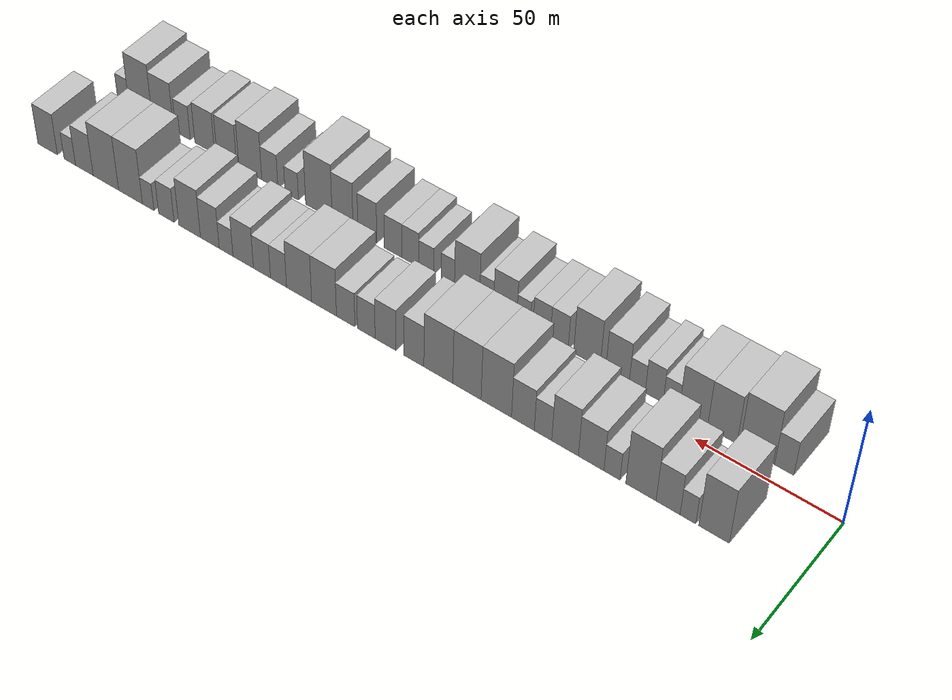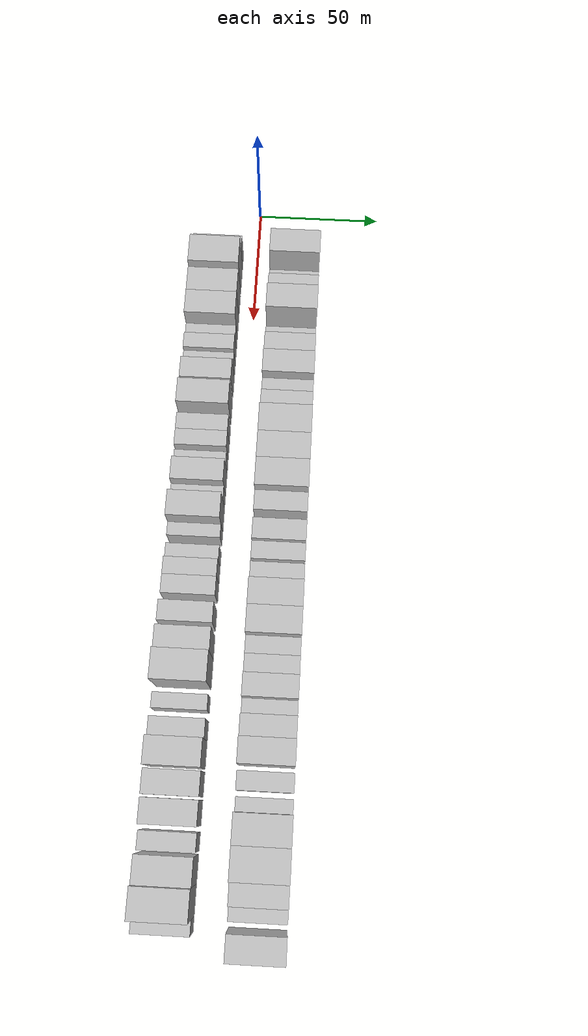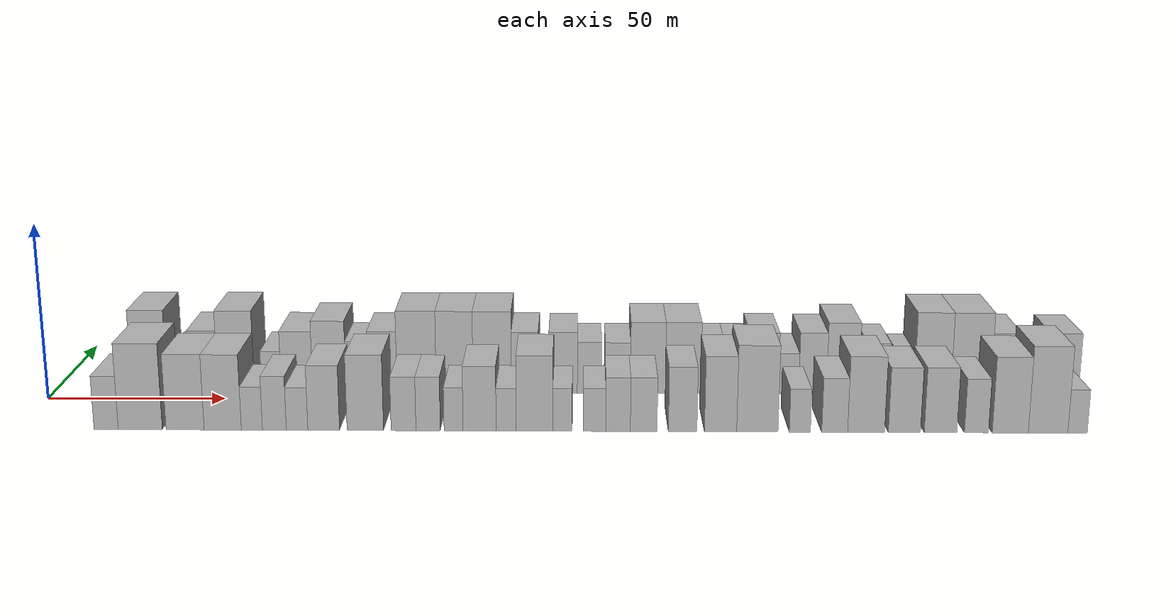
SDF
<sdf version="1.6">
 <world name="default">
  <scene>
   <sky><clouds><speed>12</speed></clouds></sky>
   <ambient>0.4 0.4 0.4 1</ambient>
   <background>0.7 0.7 0.7 1</background>
   <shadows>1</shadows>
  </scene>
  <gravity>0 0 -9.8066</gravity>
  <magnetic_field>6e-06 2.3e-05 -4.2e-05</magnetic_field>
  <physics default="0" name="default_physics" type="ode">
   <ode>
    <solver>
     <type>quick</type>
     <iters>10</iters>
     <sor>1.0</sor>
     <use_dynamic_moi_rescaling>0</use_dynamic_moi_rescaling>
    </solver>
    <constraints>
     <cfm>0</cfm>
     <erp>0.2</erp>
     <contact_max_correcting_vel>100</contact_max_correcting_vel>
     <contact_surface_layer>0.001</contact_surface_layer>
    </constraints>
   </ode>
   <max_step_size>0.004</max_step_size>
   <real_time_factor>1</real_time_factor>
   <real_time_update_rate>250</real_time_update_rate>
  </physics>
  <light name="sun" type="directional">
   <pose>0 0 10 0 0 0</pose>
   <diffuse>0.8 0.8 0.8 1</diffuse>
   <specular>0.2 0.2 0.2 1</specular>
   <attenuation>
    <range>1000</range>
    <constant>0.9</constant>
    <linear>0.01</linear>
    <quadratic>0.001</quadratic>
   </attenuation>
   <direction>-0.5 0.1 -0.9</direction>
  </light>
  <model name="building_1">
   <static>1</static>
   <pose>27.0947 16.0000 0 0.000000 0.000000 1.570796</pose>
   <link name="link">
    <pose>0 0 12.00 0 0 0</pose>
    <collision name="collision"><geometry><box><size>20.0000 10.1894 24.0000</size></box></geometry></collision>
    <visual name="visual">
     <cast_shadows>0</cast_shadows>
     <geometry><box><size>20.0000 10.1894 24.0000</size></box></geometry>
     <material>
      <script>
       <uri>model://HANNAS_wall/materials/scripts</uri>
       <uri>model://HANNAS_wall/materials/textures</uri>
       <name>vrc/HANNAS_wall</name>
      </script>
     </material>
    </visual>
   </link>
  </model>
  <model name="building_2">
   <static>1</static>
   <pose>35.8412 16.0000 0 0.000000 0.000000 1.570796</pose>
   <link name="link">
    <pose>0 0 6.00 0 0 0</pose>
    <collision name="collision"><geometry><box><size>20.0000 5.3035 12.0000</size></box></geometry></collision>
    <visual name="visual">
     <cast_shadows>0</cast_shadows>
     <geometry><box><size>20.0000 5.3035 12.0000</size></box></geometry>
     <material>
      <script>
       <uri>model://HANNAS_wall/materials/scripts</uri>
       <uri>model://HANNAS_wall/materials/textures</uri>
       <name>vrc/HANNAS_wall</name>
      </script>
     </material>
    </visual>
   </link>
  </model>
  <model name="building_3">
   <static>1</static>
   <pose>42.5655 16.0000 0 0.000000 0.000000 1.570796</pose>
   <link name="link">
    <pose>0 0 9.00 0 0 0</pose>
    <collision name="collision"><geometry><box><size>20.0000 8.1453 18.0000</size></box></geometry></collision>
    <visual name="visual">
     <cast_shadows>0</cast_shadows>
     <geometry><box><size>20.0000 8.1453 18.0000</size></box></geometry>
     <material>
      <script>
       <uri>model://HANNAS_wall/materials/scripts</uri>
       <uri>model://HANNAS_wall/materials/textures</uri>
       <name>vrc/HANNAS_wall</name>
      </script>
     </material>
    </visual>
   </link>
  </model>
  <model name="building_4">
   <static>1</static>
   <pose>51.8366 16.0000 0 0.000000 0.000000 1.570796</pose>
   <link name="link">
    <pose>0 0 12.00 0 0 0</pose>
    <collision name="collision"><geometry><box><size>20.0000 10.3967 24.0000</size></box></geometry></collision>
    <visual name="visual">
     <cast_shadows>0</cast_shadows>
     <geometry><box><size>20.0000 10.3967 24.0000</size></box></geometry>
     <material>
      <script>
       <uri>model://HANNAS_wall/materials/scripts</uri>
       <uri>model://HANNAS_wall/materials/textures</uri>
       <name>vrc/HANNAS_wall</name>
      </script>
     </material>
    </visual>
   </link>
  </model>
  <model name="building_5">
   <static>1</static>
   <pose>61.8363 16.0000 0 0.000000 0.000000 1.570796</pose>
   <link name="link">
    <pose>0 0 6.00 0 0 0</pose>
    <collision name="collision"><geometry><box><size>20.0000 5.6027 12.0000</size></box></geometry></collision>
    <visual name="visual">
     <cast_shadows>0</cast_shadows>
     <geometry><box><size>20.0000 5.6027 12.0000</size></box></geometry>
     <material>
      <script>
       <uri>model://HANNAS_wall/materials/scripts</uri>
       <uri>model://HANNAS_wall/materials/textures</uri>
       <name>vrc/HANNAS_wall</name>
      </script>
     </material>
    </visual>
   </link>
  </model>
  <model name="building_6">
   <static>1</static>
   <pose>69.1210 16.0000 0 0.000000 0.000000 1.570796</pose>
   <link name="link">
    <pose>0 0 9.00 0 0 0</pose>
    <collision name="collision"><geometry><box><size>20.0000 8.9667 18.0000</size></box></geometry></collision>
    <visual name="visual">
     <cast_shadows>0</cast_shadows>
     <geometry><box><size>20.0000 8.9667 18.0000</size></box></geometry>
     <material>
      <script>
       <uri>model://HANNAS_wall/materials/scripts</uri>
       <uri>model://HANNAS_wall/materials/textures</uri>
       <name>vrc/HANNAS_wall</name>
      </script>
     </material>
    </visual>
   </link>
  </model>
  <model name="building_7">
   <static>1</static>
   <pose>78.3468 16.0000 0 0.000000 0.000000 1.570796</pose>
   <link name="link">
    <pose>0 0 10.50 0 0 0</pose>
    <collision name="collision"><geometry><box><size>20.0000 9.4850 21.0000</size></box></geometry></collision>
    <visual name="visual">
     <cast_shadows>0</cast_shadows>
     <geometry><box><size>20.0000 9.4850 21.0000</size></box></geometry>
     <material>
      <script>
       <uri>model://HANNAS_wall/materials/scripts</uri>
       <uri>model://HANNAS_wall/materials/textures</uri>
       <name>vrc/HANNAS_wall</name>
      </script>
     </material>
    </visual>
   </link>
  </model>
  <model name="building_8">
   <static>1</static>
   <pose>86.2130 16.0000 0 0.000000 0.000000 1.570796</pose>
   <link name="link">
    <pose>0 0 7.50 0 0 0</pose>
    <collision name="collision"><geometry><box><size>20.0000 6.2475 15.0000</size></box></geometry></collision>
    <visual name="visual">
     <cast_shadows>0</cast_shadows>
     <geometry><box><size>20.0000 6.2475 15.0000</size></box></geometry>
     <material>
      <script>
       <uri>model://HANNAS_wall/materials/scripts</uri>
       <uri>model://HANNAS_wall/materials/textures</uri>
       <name>vrc/HANNAS_wall</name>
      </script>
     </material>
    </visual>
   </link>
  </model>
  <model name="building_9">
   <static>1</static>
   <pose>93.4682 16.0000 0 0.000000 0.000000 1.570796</pose>
   <link name="link">
    <pose>0 0 9.00 0 0 0</pose>
    <collision name="collision"><geometry><box><size>20.0000 8.2628 18.0000</size></box></geometry></collision>
    <visual name="visual">
     <cast_shadows>0</cast_shadows>
     <geometry><box><size>20.0000 8.2628 18.0000</size></box></geometry>
     <material>
      <script>
       <uri>model://HANNAS_wall/materials/scripts</uri>
       <uri>model://HANNAS_wall/materials/textures</uri>
       <name>vrc/HANNAS_wall</name>
      </script>
     </material>
    </visual>
   </link>
  </model>
  <model name="building_10">
   <static>1</static>
   <pose>103.1836 16.0000 0 0.000000 0.000000 1.570796</pose>
   <link name="link">
    <pose>0 0 12.00 0 0 0</pose>
    <collision name="collision"><geometry><box><size>20.0000 11.1680 24.0000</size></box></geometry></collision>
    <visual name="visual">
     <cast_shadows>0</cast_shadows>
     <geometry><box><size>20.0000 11.1680 24.0000</size></box></geometry>
     <material>
      <script>
       <uri>model://HANNAS_wall/materials/scripts</uri>
       <uri>model://HANNAS_wall/materials/textures</uri>
       <name>vrc/HANNAS_wall</name>
      </script>
     </material>
    </visual>
   </link>
  </model>
  <model name="building_11">
   <static>1</static>
   <pose>114.0041 16.0000 0 0.000000 0.000000 1.570796</pose>
   <link name="link">
    <pose>0 0 12.00 0 0 0</pose>
    <collision name="collision"><geometry><box><size>20.0000 10.4730 24.0000</size></box></geometry></collision>
    <visual name="visual">
     <cast_shadows>0</cast_shadows>
     <geometry><box><size>20.0000 10.4730 24.0000</size></box></geometry>
     <material>
      <script>
       <uri>model://HANNAS_wall/materials/scripts</uri>
       <uri>model://HANNAS_wall/materials/textures</uri>
       <name>vrc/HANNAS_wall</name>
      </script>
     </material>
    </visual>
   </link>
  </model>
  <model name="building_12">
   <static>1</static>
   <pose>124.6937 16.0000 0 0.000000 0.000000 1.570796</pose>
   <link name="link">
    <pose>0 0 12.00 0 0 0</pose>
    <collision name="collision"><geometry><box><size>20.0000 10.9062 24.0000</size></box></geometry></collision>
    <visual name="visual">
     <cast_shadows>0</cast_shadows>
     <geometry><box><size>20.0000 10.9062 24.0000</size></box></geometry>
     <material>
      <script>
       <uri>model://HANNAS_wall/materials/scripts</uri>
       <uri>model://HANNAS_wall/materials/textures</uri>
       <name>vrc/HANNAS_wall</name>
      </script>
     </material>
    </visual>
   </link>
  </model>
  <model name="building_13">
   <static>1</static>
   <pose>133.9658 16.0000 0 0.000000 0.000000 1.570796</pose>
   <link name="link">
    <pose>0 0 9.00 0 0 0</pose>
    <collision name="collision"><geometry><box><size>20.0000 7.6379 18.0000</size></box></geometry></collision>
    <visual name="visual">
     <cast_shadows>0</cast_shadows>
     <geometry><box><size>20.0000 7.6379 18.0000</size></box></geometry>
     <material>
      <script>
       <uri>model://HANNAS_wall/materials/scripts</uri>
       <uri>model://HANNAS_wall/materials/textures</uri>
       <name>vrc/HANNAS_wall</name>
      </script>
     </material>
    </visual>
   </link>
  </model>
  <model name="building_14">
   <static>1</static>
   <pose>144.8088 16.0000 0 0.000000 0.000000 1.570796</pose>
   <link name="link">
    <pose>0 0 9.00 0 0 0</pose>
    <collision name="collision"><geometry><box><size>20.0000 8.0482 18.0000</size></box></geometry></collision>
    <visual name="visual">
     <cast_shadows>0</cast_shadows>
     <geometry><box><size>20.0000 8.0482 18.0000</size></box></geometry>
     <material>
      <script>
       <uri>model://HANNAS_wall/materials/scripts</uri>
       <uri>model://HANNAS_wall/materials/textures</uri>
       <name>vrc/HANNAS_wall</name>
      </script>
     </material>
    </visual>
   </link>
  </model>
  <model name="building_15">
   <static>1</static>
   <pose>152.2666 16.0000 0 0.000000 0.000000 1.570796</pose>
   <link name="link">
    <pose>0 0 7.50 0 0 0</pose>
    <collision name="collision"><geometry><box><size>20.0000 6.8674 15.0000</size></box></geometry></collision>
    <visual name="visual">
     <cast_shadows>0</cast_shadows>
     <geometry><box><size>20.0000 6.8674 15.0000</size></box></geometry>
     <material>
      <script>
       <uri>model://HANNAS_wall/materials/scripts</uri>
       <uri>model://HANNAS_wall/materials/textures</uri>
       <name>vrc/HANNAS_wall</name>
      </script>
     </material>
    </visual>
   </link>
  </model>
  <model name="building_16">
   <static>1</static>
   <pose>160.3227 16.0000 0 0.000000 0.000000 1.570796</pose>
   <link name="link">
    <pose>0 0 7.50 0 0 0</pose>
    <collision name="collision"><geometry><box><size>20.0000 7.2447 15.0000</size></box></geometry></collision>
    <visual name="visual">
     <cast_shadows>0</cast_shadows>
     <geometry><box><size>20.0000 7.2447 15.0000</size></box></geometry>
     <material>
      <script>
       <uri>model://HANNAS_wall/materials/scripts</uri>
       <uri>model://HANNAS_wall/materials/textures</uri>
       <name>vrc/HANNAS_wall</name>
      </script>
     </material>
    </visual>
   </link>
  </model>
  <model name="building_17">
   <static>1</static>
   <pose>168.8690 16.0000 0 0.000000 0.000000 1.570796</pose>
   <link name="link">
    <pose>0 0 10.50 0 0 0</pose>
    <collision name="collision"><geometry><box><size>20.0000 9.8481 21.0000</size></box></geometry></collision>
    <visual name="visual">
     <cast_shadows>0</cast_shadows>
     <geometry><box><size>20.0000 9.8481 21.0000</size></box></geometry>
     <material>
      <script>
       <uri>model://HANNAS_wall/materials/scripts</uri>
       <uri>model://HANNAS_wall/materials/textures</uri>
       <name>vrc/HANNAS_wall</name>
      </script>
     </material>
    </visual>
   </link>
  </model>
  <model name="building_18">
   <static>1</static>
   <pose>178.8394 16.0000 0 0.000000 0.000000 1.570796</pose>
   <link name="link">
    <pose>0 0 10.50 0 0 0</pose>
    <collision name="collision"><geometry><box><size>20.0000 10.0925 21.0000</size></box></geometry></collision>
    <visual name="visual">
     <cast_shadows>0</cast_shadows>
     <geometry><box><size>20.0000 10.0925 21.0000</size></box></geometry>
     <material>
      <script>
       <uri>model://HANNAS_wall/materials/scripts</uri>
       <uri>model://HANNAS_wall/materials/textures</uri>
       <name>vrc/HANNAS_wall</name>
      </script>
     </material>
    </visual>
   </link>
  </model>
  <model name="building_19">
   <static>1</static>
   <pose>187.1426 16.0000 0 0.000000 0.000000 1.570796</pose>
   <link name="link">
    <pose>0 0 7.50 0 0 0</pose>
    <collision name="collision"><geometry><box><size>20.0000 6.5140 15.0000</size></box></geometry></collision>
    <visual name="visual">
     <cast_shadows>0</cast_shadows>
     <geometry><box><size>20.0000 6.5140 15.0000</size></box></geometry>
     <material>
      <script>
       <uri>model://HANNAS_wall/materials/scripts</uri>
       <uri>model://HANNAS_wall/materials/textures</uri>
       <name>vrc/HANNAS_wall</name>
      </script>
     </material>
    </visual>
   </link>
  </model>
  <model name="building_20">
   <static>1</static>
   <pose>193.8943 16.0000 0 0.000000 0.000000 1.570796</pose>
   <link name="link">
    <pose>0 0 7.50 0 0 0</pose>
    <collision name="collision"><geometry><box><size>20.0000 6.9893 15.0000</size></box></geometry></collision>
    <visual name="visual">
     <cast_shadows>0</cast_shadows>
     <geometry><box><size>20.0000 6.9893 15.0000</size></box></geometry>
     <material>
      <script>
       <uri>model://HANNAS_wall/materials/scripts</uri>
       <uri>model://HANNAS_wall/materials/textures</uri>
       <name>vrc/HANNAS_wall</name>
      </script>
     </material>
    </visual>
   </link>
  </model>
  <model name="building_21">
   <static>1</static>
   <pose>201.6064 16.0000 0 0.000000 0.000000 1.570796</pose>
   <link name="link">
    <pose>0 0 9.00 0 0 0</pose>
    <collision name="collision"><geometry><box><size>20.0000 8.4348 18.0000</size></box></geometry></collision>
    <visual name="visual">
     <cast_shadows>0</cast_shadows>
     <geometry><box><size>20.0000 8.4348 18.0000</size></box></geometry>
     <material>
      <script>
       <uri>model://HANNAS_wall/materials/scripts</uri>
       <uri>model://HANNAS_wall/materials/textures</uri>
       <name>vrc/HANNAS_wall</name>
      </script>
     </material>
    </visual>
   </link>
  </model>
  <model name="building_22">
   <static>1</static>
   <pose>208.6975 16.0000 0 0.000000 0.000000 1.570796</pose>
   <link name="link">
    <pose>0 0 6.00 0 0 0</pose>
    <collision name="collision"><geometry><box><size>20.0000 5.7476 12.0000</size></box></geometry></collision>
    <visual name="visual">
     <cast_shadows>0</cast_shadows>
     <geometry><box><size>20.0000 5.7476 12.0000</size></box></geometry>
     <material>
      <script>
       <uri>model://HANNAS_wall/materials/scripts</uri>
       <uri>model://HANNAS_wall/materials/textures</uri>
       <name>vrc/HANNAS_wall</name>
      </script>
     </material>
    </visual>
   </link>
  </model>
  <model name="building_23">
   <static>1</static>
   <pose>215.4976 16.0000 0 0.000000 0.000000 1.570796</pose>
   <link name="link">
    <pose>0 0 9.00 0 0 0</pose>
    <collision name="collision"><geometry><box><size>20.0000 7.8526 18.0000</size></box></geometry></collision>
    <visual name="visual">
     <cast_shadows>0</cast_shadows>
     <geometry><box><size>20.0000 7.8526 18.0000</size></box></geometry>
     <material>
      <script>
       <uri>model://HANNAS_wall/materials/scripts</uri>
       <uri>model://HANNAS_wall/materials/textures</uri>
       <name>vrc/HANNAS_wall</name>
      </script>
     </material>
    </visual>
   </link>
  </model>
  <model name="building_24">
   <static>1</static>
   <pose>224.0036 16.0000 0 0.000000 0.000000 1.570796</pose>
   <link name="link">
    <pose>0 0 10.50 0 0 0</pose>
    <collision name="collision"><geometry><box><size>20.0000 9.1593 21.0000</size></box></geometry></collision>
    <visual name="visual">
     <cast_shadows>0</cast_shadows>
     <geometry><box><size>20.0000 9.1593 21.0000</size></box></geometry>
     <material>
      <script>
       <uri>model://HANNAS_wall/materials/scripts</uri>
       <uri>model://HANNAS_wall/materials/textures</uri>
       <name>vrc/HANNAS_wall</name>
      </script>
     </material>
    </visual>
   </link>
  </model>
  <model name="building_25">
   <static>1</static>
   <pose>233.9026 16.0000 0 0.000000 0.000000 1.570796</pose>
   <link name="link">
    <pose>0 0 7.50 0 0 0</pose>
    <collision name="collision"><geometry><box><size>20.0000 6.6388 15.0000</size></box></geometry></collision>
    <visual name="visual">
     <cast_shadows>0</cast_shadows>
     <geometry><box><size>20.0000 6.6388 15.0000</size></box></geometry>
     <material>
      <script>
       <uri>model://HANNAS_wall/materials/scripts</uri>
       <uri>model://HANNAS_wall/materials/textures</uri>
       <name>vrc/HANNAS_wall</name>
      </script>
     </material>
    </visual>
   </link>
  </model>
  <model name="building_26">
   <static>1</static>
   <pose>241.7194 16.0000 0 0.000000 0.000000 1.570796</pose>
   <link name="link">
    <pose>0 0 6.00 0 0 0</pose>
    <collision name="collision"><geometry><box><size>20.0000 4.9949 12.0000</size></box></geometry></collision>
    <visual name="visual">
     <cast_shadows>0</cast_shadows>
     <geometry><box><size>20.0000 4.9949 12.0000</size></box></geometry>
     <material>
      <script>
       <uri>model://HANNAS_wall/materials/scripts</uri>
       <uri>model://HANNAS_wall/materials/textures</uri>
       <name>vrc/HANNAS_wall</name>
      </script>
     </material>
    </visual>
   </link>
  </model>
  <model name="building_27">
   <static>1</static>
   <pose>249.4004 16.0000 0 0.000000 0.000000 1.570796</pose>
   <link name="link">
    <pose>0 0 12.00 0 0 0</pose>
    <collision name="collision"><geometry><box><size>20.0000 10.3670 24.0000</size></box></geometry></collision>
    <visual name="visual">
     <cast_shadows>0</cast_shadows>
     <geometry><box><size>20.0000 10.3670 24.0000</size></box></geometry>
     <material>
      <script>
       <uri>model://HANNAS_wall/materials/scripts</uri>
       <uri>model://HANNAS_wall/materials/textures</uri>
       <name>vrc/HANNAS_wall</name>
      </script>
     </material>
    </visual>
   </link>
  </model>
  <model name="building_28">
   <static>1</static>
   <pose>260.2053 16.0000 0 0.000000 0.000000 1.570796</pose>
   <link name="link">
    <pose>0 0 12.00 0 0 0</pose>
    <collision name="collision"><geometry><box><size>20.0000 11.2428 24.0000</size></box></geometry></collision>
    <visual name="visual">
     <cast_shadows>0</cast_shadows>
     <geometry><box><size>20.0000 11.2428 24.0000</size></box></geometry>
     <material>
      <script>
       <uri>model://HANNAS_wall/materials/scripts</uri>
       <uri>model://HANNAS_wall/materials/textures</uri>
       <name>vrc/HANNAS_wall</name>
      </script>
     </material>
    </visual>
   </link>
  </model>
  <model name="building_29">
   <static>1</static>
   <pose>269.7765 16.0000 0 0.000000 0.000000 1.570796</pose>
   <link name="link">
    <pose>0 0 9.00 0 0 0</pose>
    <collision name="collision"><geometry><box><size>20.0000 7.8995 18.0000</size></box></geometry></collision>
    <visual name="visual">
     <cast_shadows>0</cast_shadows>
     <geometry><box><size>20.0000 7.8995 18.0000</size></box></geometry>
     <material>
      <script>
       <uri>model://HANNAS_wall/materials/scripts</uri>
       <uri>model://HANNAS_wall/materials/textures</uri>
       <name>vrc/HANNAS_wall</name>
      </script>
     </material>
    </visual>
   </link>
  </model>
  <model name="building_30">
   <static>1</static>
   <pose>276.3027 16.0000 0 0.000000 0.000000 1.570796</pose>
   <link name="link">
    <pose>0 0 6.00 0 0 0</pose>
    <collision name="collision"><geometry><box><size>20.0000 5.1528 12.0000</size></box></geometry></collision>
    <visual name="visual">
     <cast_shadows>0</cast_shadows>
     <geometry><box><size>20.0000 5.1528 12.0000</size></box></geometry>
     <material>
      <script>
       <uri>model://HANNAS_wall/materials/scripts</uri>
       <uri>model://HANNAS_wall/materials/textures</uri>
       <name>vrc/HANNAS_wall</name>
      </script>
     </material>
    </visual>
   </link>
  </model>
  <model name="building_31">
   <static>1</static>
   <pose>286.2934 16.0000 0 0.000000 0.000000 1.570796</pose>
   <link name="link">
    <pose>0 0 9.00 0 0 0</pose>
    <collision name="collision"><geometry><box><size>20.0000 8.8286 18.0000</size></box></geometry></collision>
    <visual name="visual">
     <cast_shadows>0</cast_shadows>
     <geometry><box><size>20.0000 8.8286 18.0000</size></box></geometry>
     <material>
      <script>
       <uri>model://HANNAS_wall/materials/scripts</uri>
       <uri>model://HANNAS_wall/materials/textures</uri>
       <name>vrc/HANNAS_wall</name>
      </script>
     </material>
    </visual>
   </link>
  </model>
  <model name="building_32">
   <static>1</static>
   <pose>23.2325 -16.0000 0 0.000000 0.000000 1.570796</pose>
   <link name="link">
    <pose>0 0 7.50 0 0 0</pose>
    <collision name="collision"><geometry><box><size>20.0000 6.4650 15.0000</size></box></geometry></collision>
    <visual name="visual">
     <cast_shadows>0</cast_shadows>
     <geometry><box><size>20.0000 6.4650 15.0000</size></box></geometry>
     <material>
      <script>
       <uri>model://HANNAS_wall/materials/scripts</uri>
       <uri>model://HANNAS_wall/materials/textures</uri>
       <name>vrc/HANNAS_wall</name>
      </script>
     </material>
    </visual>
   </link>
  </model>
  <model name="building_33">
   <static>1</static>
   <pose>32.3627 -16.0000 0 0.000000 0.000000 1.570796</pose>
   <link name="link">
    <pose>0 0 12.00 0 0 0</pose>
    <collision name="collision"><geometry><box><size>20.0000 11.7952 24.0000</size></box></geometry></collision>
    <visual name="visual">
     <cast_shadows>0</cast_shadows>
     <geometry><box><size>20.0000 11.7952 24.0000</size></box></geometry>
     <material>
      <script>
       <uri>model://HANNAS_wall/materials/scripts</uri>
       <uri>model://HANNAS_wall/materials/textures</uri>
       <name>vrc/HANNAS_wall</name>
      </script>
     </material>
    </visual>
   </link>
  </model>
  <model name="building_34">
   <static>1</static>
   <pose>44.3522 -16.0000 0 0.000000 0.000000 1.570796</pose>
   <link name="link">
    <pose>0 0 10.50 0 0 0</pose>
    <collision name="collision"><geometry><box><size>20.0000 10.1837 21.0000</size></box></geometry></collision>
    <visual name="visual">
     <cast_shadows>0</cast_shadows>
     <geometry><box><size>20.0000 10.1837 21.0000</size></box></geometry>
     <material>
      <script>
       <uri>model://HANNAS_wall/materials/scripts</uri>
       <uri>model://HANNAS_wall/materials/textures</uri>
       <name>vrc/HANNAS_wall</name>
      </script>
     </material>
    </visual>
   </link>
  </model>
  <model name="building_35">
   <static>1</static>
   <pose>54.4142 -16.0000 0 0.000000 0.000000 1.570796</pose>
   <link name="link">
    <pose>0 0 10.50 0 0 0</pose>
    <collision name="collision"><geometry><box><size>20.0000 9.9404 21.0000</size></box></geometry></collision>
    <visual name="visual">
     <cast_shadows>0</cast_shadows>
     <geometry><box><size>20.0000 9.9404 21.0000</size></box></geometry>
     <material>
      <script>
       <uri>model://HANNAS_wall/materials/scripts</uri>
       <uri>model://HANNAS_wall/materials/textures</uri>
       <name>vrc/HANNAS_wall</name>
      </script>
     </material>
    </visual>
   </link>
  </model>
  <model name="building_36">
   <static>1</static>
   <pose>62.2019 -16.0000 0 0.000000 0.000000 1.570796</pose>
   <link name="link">
    <pose>0 0 6.00 0 0 0</pose>
    <collision name="collision"><geometry><box><size>20.0000 5.6350 12.0000</size></box></geometry></collision>
    <visual name="visual">
     <cast_shadows>0</cast_shadows>
     <geometry><box><size>20.0000 5.6350 12.0000</size></box></geometry>
     <material>
      <script>
       <uri>model://HANNAS_wall/materials/scripts</uri>
       <uri>model://HANNAS_wall/materials/textures</uri>
       <name>vrc/HANNAS_wall</name>
      </script>
     </material>
    </visual>
   </link>
  </model>
  <model name="building_37">
   <static>1</static>
   <pose>68.2128 -16.0000 0 0.000000 0.000000 1.570796</pose>
   <link name="link">
    <pose>0 0 7.50 0 0 0</pose>
    <collision name="collision"><geometry><box><size>20.0000 6.3868 15.0000</size></box></geometry></collision>
    <visual name="visual">
     <cast_shadows>0</cast_shadows>
     <geometry><box><size>20.0000 6.3868 15.0000</size></box></geometry>
     <material>
      <script>
       <uri>model://HANNAS_wall/materials/scripts</uri>
       <uri>model://HANNAS_wall/materials/textures</uri>
       <name>vrc/HANNAS_wall</name>
      </script>
     </material>
    </visual>
   </link>
  </model>
  <model name="building_38">
   <static>1</static>
   <pose>74.2764 -16.0000 0 0.000000 0.000000 1.570796</pose>
   <link name="link">
    <pose>0 0 6.00 0 0 0</pose>
    <collision name="collision"><geometry><box><size>20.0000 5.7403 12.0000</size></box></geometry></collision>
    <visual name="visual">
     <cast_shadows>0</cast_shadows>
     <geometry><box><size>20.0000 5.7403 12.0000</size></box></geometry>
     <material>
      <script>
       <uri>model://HANNAS_wall/materials/scripts</uri>
       <uri>model://HANNAS_wall/materials/textures</uri>
       <name>vrc/HANNAS_wall</name>
      </script>
     </material>
    </visual>
   </link>
  </model>
  <model name="building_39">
   <static>1</static>
   <pose>81.3777 -16.0000 0 0.000000 0.000000 1.570796</pose>
   <link name="link">
    <pose>0 0 9.00 0 0 0</pose>
    <collision name="collision"><geometry><box><size>20.0000 8.4623 18.0000</size></box></geometry></collision>
    <visual name="visual">
     <cast_shadows>0</cast_shadows>
     <geometry><box><size>20.0000 8.4623 18.0000</size></box></geometry>
     <material>
      <script>
       <uri>model://HANNAS_wall/materials/scripts</uri>
       <uri>model://HANNAS_wall/materials/textures</uri>
       <name>vrc/HANNAS_wall</name>
      </script>
     </material>
    </visual>
   </link>
  </model>
  <model name="building_40">
   <static>1</static>
   <pose>92.4801 -16.0000 0 0.000000 0.000000 1.570796</pose>
   <link name="link">
    <pose>0 0 10.50 0 0 0</pose>
    <collision name="collision"><geometry><box><size>20.0000 9.7426 21.0000</size></box></geometry></collision>
    <visual name="visual">
     <cast_shadows>0</cast_shadows>
     <geometry><box><size>20.0000 9.7426 21.0000</size></box></geometry>
     <material>
      <script>
       <uri>model://HANNAS_wall/materials/scripts</uri>
       <uri>model://HANNAS_wall/materials/textures</uri>
       <name>vrc/HANNAS_wall</name>
      </script>
     </material>
    </visual>
   </link>
  </model>
  <model name="building_41">
   <static>1</static>
   <pose>102.6663 -16.0000 0 0.000000 0.000000 1.570796</pose>
   <link name="link">
    <pose>0 0 7.50 0 0 0</pose>
    <collision name="collision"><geometry><box><size>20.0000 6.6298 15.0000</size></box></geometry></collision>
    <visual name="visual">
     <cast_shadows>0</cast_shadows>
     <geometry><box><size>20.0000 6.6298 15.0000</size></box></geometry>
     <material>
      <script>
       <uri>model://HANNAS_wall/materials/scripts</uri>
       <uri>model://HANNAS_wall/materials/textures</uri>
       <name>vrc/HANNAS_wall</name>
      </script>
     </material>
    </visual>
   </link>
  </model>
  <model name="building_42">
   <static>1</static>
   <pose>109.2290 -16.0000 0 0.000000 0.000000 1.570796</pose>
   <link name="link">
    <pose>0 0 7.50 0 0 0</pose>
    <collision name="collision"><geometry><box><size>20.0000 6.4957 15.0000</size></box></geometry></collision>
    <visual name="visual">
     <cast_shadows>0</cast_shadows>
     <geometry><box><size>20.0000 6.4957 15.0000</size></box></geometry>
     <material>
      <script>
       <uri>model://HANNAS_wall/materials/scripts</uri>
       <uri>model://HANNAS_wall/materials/textures</uri>
       <name>vrc/HANNAS_wall</name>
      </script>
     </material>
    </visual>
   </link>
  </model>
  <model name="building_43">
   <static>1</static>
   <pose>116.0115 -16.0000 0 0.000000 0.000000 1.570796</pose>
   <link name="link">
    <pose>0 0 6.00 0 0 0</pose>
    <collision name="collision"><geometry><box><size>20.0000 5.0692 12.0000</size></box></geometry></collision>
    <visual name="visual">
     <cast_shadows>0</cast_shadows>
     <geometry><box><size>20.0000 5.0692 12.0000</size></box></geometry>
     <material>
      <script>
       <uri>model://HANNAS_wall/materials/scripts</uri>
       <uri>model://HANNAS_wall/materials/textures</uri>
       <name>vrc/HANNAS_wall</name>
      </script>
     </material>
    </visual>
   </link>
  </model>
  <model name="building_44">
   <static>1</static>
   <pose>122.9533 -16.0000 0 0.000000 0.000000 1.570796</pose>
   <link name="link">
    <pose>0 0 9.00 0 0 0</pose>
    <collision name="collision"><geometry><box><size>20.0000 8.8144 18.0000</size></box></geometry></collision>
    <visual name="visual">
     <cast_shadows>0</cast_shadows>
     <geometry><box><size>20.0000 8.8144 18.0000</size></box></geometry>
     <material>
      <script>
       <uri>model://HANNAS_wall/materials/scripts</uri>
       <uri>model://HANNAS_wall/materials/textures</uri>
       <name>vrc/HANNAS_wall</name>
      </script>
     </material>
    </visual>
   </link>
  </model>
  <model name="building_45">
   <static>1</static>
   <pose>130.0379 -16.0000 0 0.000000 0.000000 1.570796</pose>
   <link name="link">
    <pose>0 0 6.00 0 0 0</pose>
    <collision name="collision"><geometry><box><size>20.0000 5.3550 12.0000</size></box></geometry></collision>
    <visual name="visual">
     <cast_shadows>0</cast_shadows>
     <geometry><box><size>20.0000 5.3550 12.0000</size></box></geometry>
     <material>
      <script>
       <uri>model://HANNAS_wall/materials/scripts</uri>
       <uri>model://HANNAS_wall/materials/textures</uri>
       <name>vrc/HANNAS_wall</name>
      </script>
     </material>
    </visual>
   </link>
  </model>
  <model name="building_46">
   <static>1</static>
   <pose>137.5811 -16.0000 0 0.000000 0.000000 1.570796</pose>
   <link name="link">
    <pose>0 0 10.50 0 0 0</pose>
    <collision name="collision"><geometry><box><size>20.0000 9.7312 21.0000</size></box></geometry></collision>
    <visual name="visual">
     <cast_shadows>0</cast_shadows>
     <geometry><box><size>20.0000 9.7312 21.0000</size></box></geometry>
     <material>
      <script>
       <uri>model://HANNAS_wall/materials/scripts</uri>
       <uri>model://HANNAS_wall/materials/textures</uri>
       <name>vrc/HANNAS_wall</name>
      </script>
     </material>
    </visual>
   </link>
  </model>
  <model name="building_47">
   <static>1</static>
   <pose>145.0253 -16.0000 0 0.000000 0.000000 1.570796</pose>
   <link name="link">
    <pose>0 0 6.00 0 0 0</pose>
    <collision name="collision"><geometry><box><size>20.0000 5.1573 12.0000</size></box></geometry></collision>
    <visual name="visual">
     <cast_shadows>0</cast_shadows>
     <geometry><box><size>20.0000 5.1573 12.0000</size></box></geometry>
     <material>
      <script>
       <uri>model://HANNAS_wall/materials/scripts</uri>
       <uri>model://HANNAS_wall/materials/textures</uri>
       <name>vrc/HANNAS_wall</name>
      </script>
     </material>
    </visual>
   </link>
  </model>
  <model name="building_48">
   <static>1</static>
   <pose>153.5626 -16.0000 0 0.000000 0.000000 1.570796</pose>
   <link name="link">
    <pose>0 0 6.00 0 0 0</pose>
    <collision name="collision"><geometry><box><size>20.0000 5.9171 12.0000</size></box></geometry></collision>
    <visual name="visual">
     <cast_shadows>0</cast_shadows>
     <geometry><box><size>20.0000 5.9171 12.0000</size></box></geometry>
     <material>
      <script>
       <uri>model://HANNAS_wall/materials/scripts</uri>
       <uri>model://HANNAS_wall/materials/textures</uri>
       <name>vrc/HANNAS_wall</name>
      </script>
     </material>
    </visual>
   </link>
  </model>
  <model name="building_49">
   <static>1</static>
   <pose>159.7974 -16.0000 0 0.000000 0.000000 1.570796</pose>
   <link name="link">
    <pose>0 0 7.50 0 0 0</pose>
    <collision name="collision"><geometry><box><size>20.0000 6.5526 15.0000</size></box></geometry></collision>
    <visual name="visual">
     <cast_shadows>0</cast_shadows>
     <geometry><box><size>20.0000 6.5526 15.0000</size></box></geometry>
     <material>
      <script>
       <uri>model://HANNAS_wall/materials/scripts</uri>
       <uri>model://HANNAS_wall/materials/textures</uri>
       <name>vrc/HANNAS_wall</name>
      </script>
     </material>
    </visual>
   </link>
  </model>
  <model name="building_50">
   <static>1</static>
   <pose>166.6296 -16.0000 0 0.000000 0.000000 1.570796</pose>
   <link name="link">
    <pose>0 0 7.50 0 0 0</pose>
    <collision name="collision"><geometry><box><size>20.0000 7.1117 15.0000</size></box></geometry></collision>
    <visual name="visual">
     <cast_shadows>0</cast_shadows>
     <geometry><box><size>20.0000 7.1117 15.0000</size></box></geometry>
     <material>
      <script>
       <uri>model://HANNAS_wall/materials/scripts</uri>
       <uri>model://HANNAS_wall/materials/textures</uri>
       <name>vrc/HANNAS_wall</name>
      </script>
     </material>
    </visual>
   </link>
  </model>
  <model name="building_51">
   <static>1</static>
   <pose>176.9816 -16.0000 0 0.000000 0.000000 1.570796</pose>
   <link name="link">
    <pose>0 0 9.00 0 0 0</pose>
    <collision name="collision"><geometry><box><size>20.0000 7.5923 18.0000</size></box></geometry></collision>
    <visual name="visual">
     <cast_shadows>0</cast_shadows>
     <geometry><box><size>20.0000 7.5923 18.0000</size></box></geometry>
     <material>
      <script>
       <uri>model://HANNAS_wall/materials/scripts</uri>
       <uri>model://HANNAS_wall/materials/textures</uri>
       <name>vrc/HANNAS_wall</name>
      </script>
     </material>
    </visual>
   </link>
  </model>
  <model name="building_52">
   <static>1</static>
   <pose>187.0522 -16.0000 0 0.000000 0.000000 1.570796</pose>
   <link name="link">
    <pose>0 0 10.50 0 0 0</pose>
    <collision name="collision"><geometry><box><size>20.0000 8.5488 21.0000</size></box></geometry></collision>
    <visual name="visual">
     <cast_shadows>0</cast_shadows>
     <geometry><box><size>20.0000 8.5488 21.0000</size></box></geometry>
     <material>
      <script>
       <uri>model://HANNAS_wall/materials/scripts</uri>
       <uri>model://HANNAS_wall/materials/textures</uri>
       <name>vrc/HANNAS_wall</name>
      </script>
     </material>
    </visual>
   </link>
  </model>
  <model name="building_53">
   <static>1</static>
   <pose>196.8157 -16.0000 0 0.000000 0.000000 1.570796</pose>
   <link name="link">
    <pose>0 0 12.00 0 0 0</pose>
    <collision name="collision"><geometry><box><size>20.0000 10.9782 24.0000</size></box></geometry></collision>
    <visual name="visual">
     <cast_shadows>0</cast_shadows>
     <geometry><box><size>20.0000 10.9782 24.0000</size></box></geometry>
     <material>
      <script>
       <uri>model://HANNAS_wall/materials/scripts</uri>
       <uri>model://HANNAS_wall/materials/textures</uri>
       <name>vrc/HANNAS_wall</name>
      </script>
     </material>
    </visual>
   </link>
  </model>
  <model name="building_54">
   <static>1</static>
   <pose>208.1074 -16.0000 0 0.000000 0.000000 1.570796</pose>
   <link name="link">
    <pose>0 0 6.00 0 0 0</pose>
    <collision name="collision"><geometry><box><size>20.0000 5.6052 12.0000</size></box></geometry></collision>
    <visual name="visual">
     <cast_shadows>0</cast_shadows>
     <geometry><box><size>20.0000 5.6052 12.0000</size></box></geometry>
     <material>
      <script>
       <uri>model://HANNAS_wall/materials/scripts</uri>
       <uri>model://HANNAS_wall/materials/textures</uri>
       <name>vrc/HANNAS_wall</name>
      </script>
     </material>
    </visual>
   </link>
  </model>
  <model name="building_55">
   <static>1</static>
   <pose>217.3409 -16.0000 0 0.000000 0.000000 1.570796</pose>
   <link name="link">
    <pose>0 0 7.50 0 0 0</pose>
    <collision name="collision"><geometry><box><size>20.0000 6.8616 15.0000</size></box></geometry></collision>
    <visual name="visual">
     <cast_shadows>0</cast_shadows>
     <geometry><box><size>20.0000 6.8616 15.0000</size></box></geometry>
     <material>
      <script>
       <uri>model://HANNAS_wall/materials/scripts</uri>
       <uri>model://HANNAS_wall/materials/textures</uri>
       <name>vrc/HANNAS_wall</name>
      </script>
     </material>
    </visual>
   </link>
  </model>
  <model name="building_56">
   <static>1</static>
   <pose>225.6757 -16.0000 0 0.000000 0.000000 1.570796</pose>
   <link name="link">
    <pose>0 0 10.50 0 0 0</pose>
    <collision name="collision"><geometry><box><size>20.0000 9.8080 21.0000</size></box></geometry></collision>
    <visual name="visual">
     <cast_shadows>0</cast_shadows>
     <geometry><box><size>20.0000 9.8080 21.0000</size></box></geometry>
     <material>
      <script>
       <uri>model://HANNAS_wall/materials/scripts</uri>
       <uri>model://HANNAS_wall/materials/textures</uri>
       <name>vrc/HANNAS_wall</name>
      </script>
     </material>
    </visual>
   </link>
  </model>
  <model name="building_57">
   <static>1</static>
   <pose>235.8396 -16.0000 0 0.000000 0.000000 1.570796</pose>
   <link name="link">
    <pose>0 0 9.00 0 0 0</pose>
    <collision name="collision"><geometry><box><size>20.0000 8.5198 18.0000</size></box></geometry></collision>
    <visual name="visual">
     <cast_shadows>0</cast_shadows>
     <geometry><box><size>20.0000 8.5198 18.0000</size></box></geometry>
     <material>
      <script>
       <uri>model://HANNAS_wall/materials/scripts</uri>
       <uri>model://HANNAS_wall/materials/textures</uri>
       <name>vrc/HANNAS_wall</name>
      </script>
     </material>
    </visual>
   </link>
  </model>
  <model name="building_58">
   <static>1</static>
   <pose>245.4225 -16.0000 0 0.000000 0.000000 1.570796</pose>
   <link name="link">
    <pose>0 0 9.00 0 0 0</pose>
    <collision name="collision"><geometry><box><size>20.0000 8.6460 18.0000</size></box></geometry></collision>
    <visual name="visual">
     <cast_shadows>0</cast_shadows>
     <geometry><box><size>20.0000 8.6460 18.0000</size></box></geometry>
     <material>
      <script>
       <uri>model://HANNAS_wall/materials/scripts</uri>
       <uri>model://HANNAS_wall/materials/textures</uri>
       <name>vrc/HANNAS_wall</name>
      </script>
     </material>
    </visual>
   </link>
  </model>
  <model name="building_59">
   <static>1</static>
   <pose>254.9222 -16.0000 0 0.000000 0.000000 1.570796</pose>
   <link name="link">
    <pose>0 0 7.50 0 0 0</pose>
    <collision name="collision"><geometry><box><size>20.0000 6.3532 15.0000</size></box></geometry></collision>
    <visual name="visual">
     <cast_shadows>0</cast_shadows>
     <geometry><box><size>20.0000 6.3532 15.0000</size></box></geometry>
     <material>
      <script>
       <uri>model://HANNAS_wall/materials/scripts</uri>
       <uri>model://HANNAS_wall/materials/textures</uri>
       <name>vrc/HANNAS_wall</name>
      </script>
     </material>
    </visual>
   </link>
  </model>
  <model name="building_60">
   <static>1</static>
   <pose>263.8725 -16.0000 0 0.000000 0.000000 1.570796</pose>
   <link name="link">
    <pose>0 0 10.50 0 0 0</pose>
    <collision name="collision"><geometry><box><size>20.0000 9.5473 21.0000</size></box></geometry></collision>
    <visual name="visual">
     <cast_shadows>0</cast_shadows>
     <geometry><box><size>20.0000 9.5473 21.0000</size></box></geometry>
     <material>
      <script>
       <uri>model://HANNAS_wall/materials/scripts</uri>
       <uri>model://HANNAS_wall/materials/textures</uri>
       <name>vrc/HANNAS_wall</name>
      </script>
     </material>
    </visual>
   </link>
  </model>
  <model name="building_61">
   <static>1</static>
   <pose>273.8852 -16.0000 0 0.000000 0.000000 1.570796</pose>
   <link name="link">
    <pose>0 0 12.00 0 0 0</pose>
    <collision name="collision"><geometry><box><size>20.0000 10.4781 24.0000</size></box></geometry></collision>
    <visual name="visual">
     <cast_shadows>0</cast_shadows>
     <geometry><box><size>20.0000 10.4781 24.0000</size></box></geometry>
     <material>
      <script>
       <uri>model://HANNAS_wall/materials/scripts</uri>
       <uri>model://HANNAS_wall/materials/textures</uri>
       <name>vrc/HANNAS_wall</name>
      </script>
     </material>
    </visual>
   </link>
  </model>
  <model name="building_62">
   <static>1</static>
   <pose>281.6918 -16.0000 0 0.000000 0.000000 1.570796</pose>
   <link name="link">
    <pose>0 0 6.00 0 0 0</pose>
    <collision name="collision"><geometry><box><size>20.0000 5.1352 12.0000</size></box></geometry></collision>
    <visual name="visual">
     <cast_shadows>0</cast_shadows>
     <geometry><box><size>20.0000 5.1352 12.0000</size></box></geometry>
     <material>
      <script>
       <uri>model://HANNAS_wall/materials/scripts</uri>
       <uri>model://HANNAS_wall/materials/textures</uri>
       <name>vrc/HANNAS_wall</name>
      </script>
     </material>
    </visual>
   </link>
  </model>
 </world>
</sdf>
